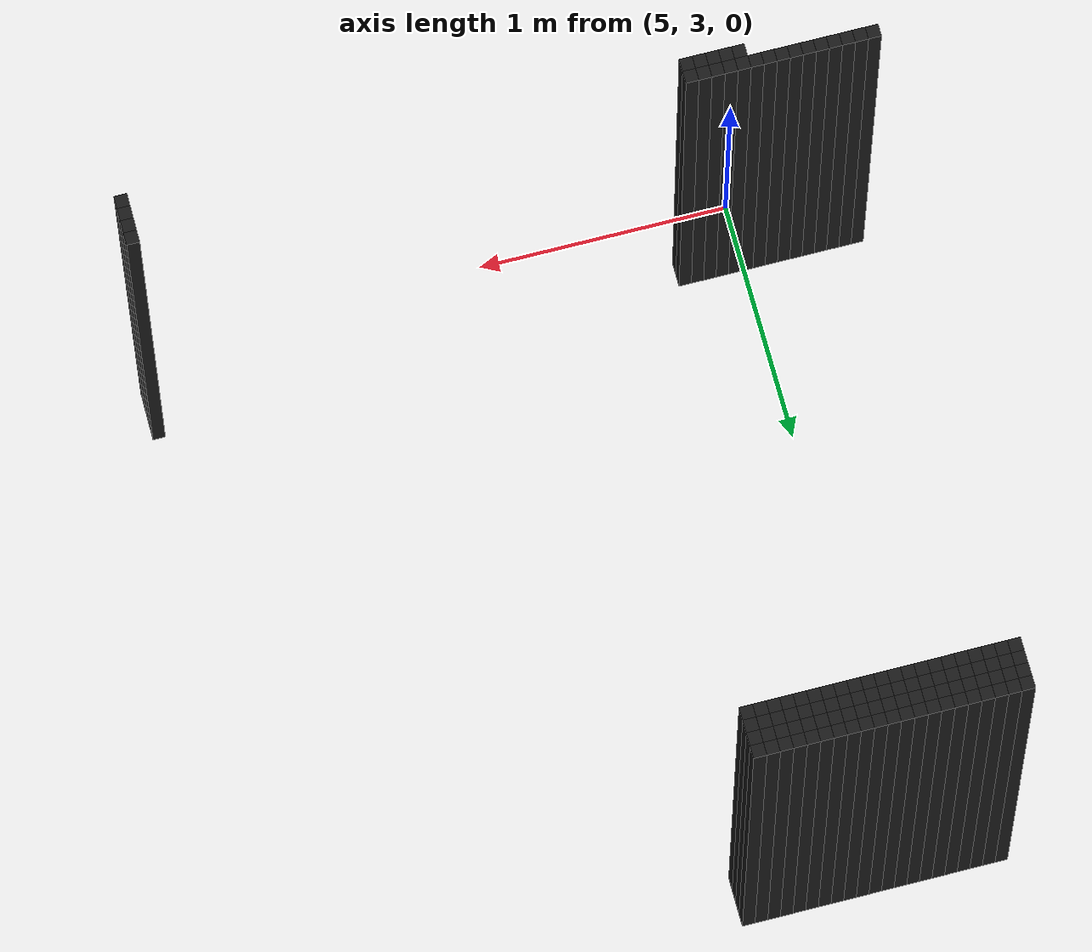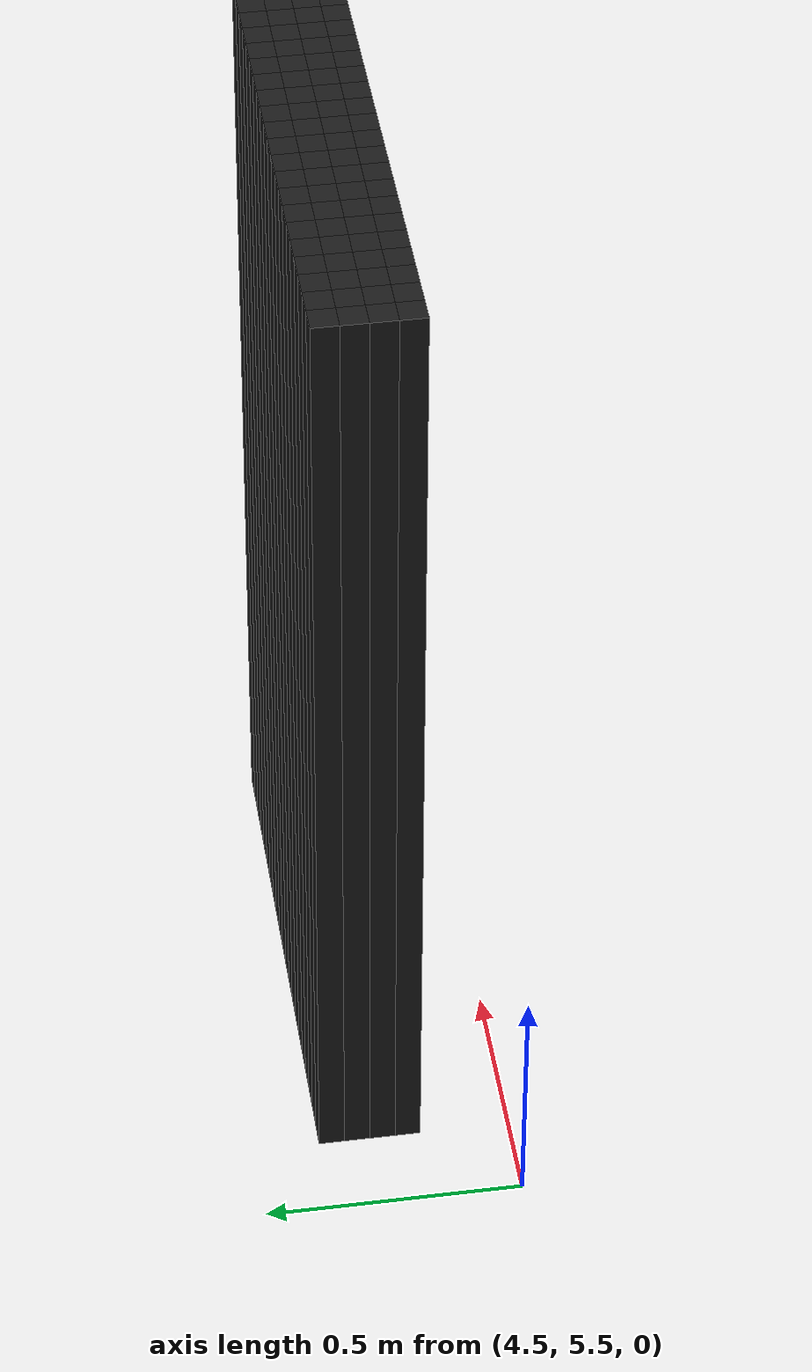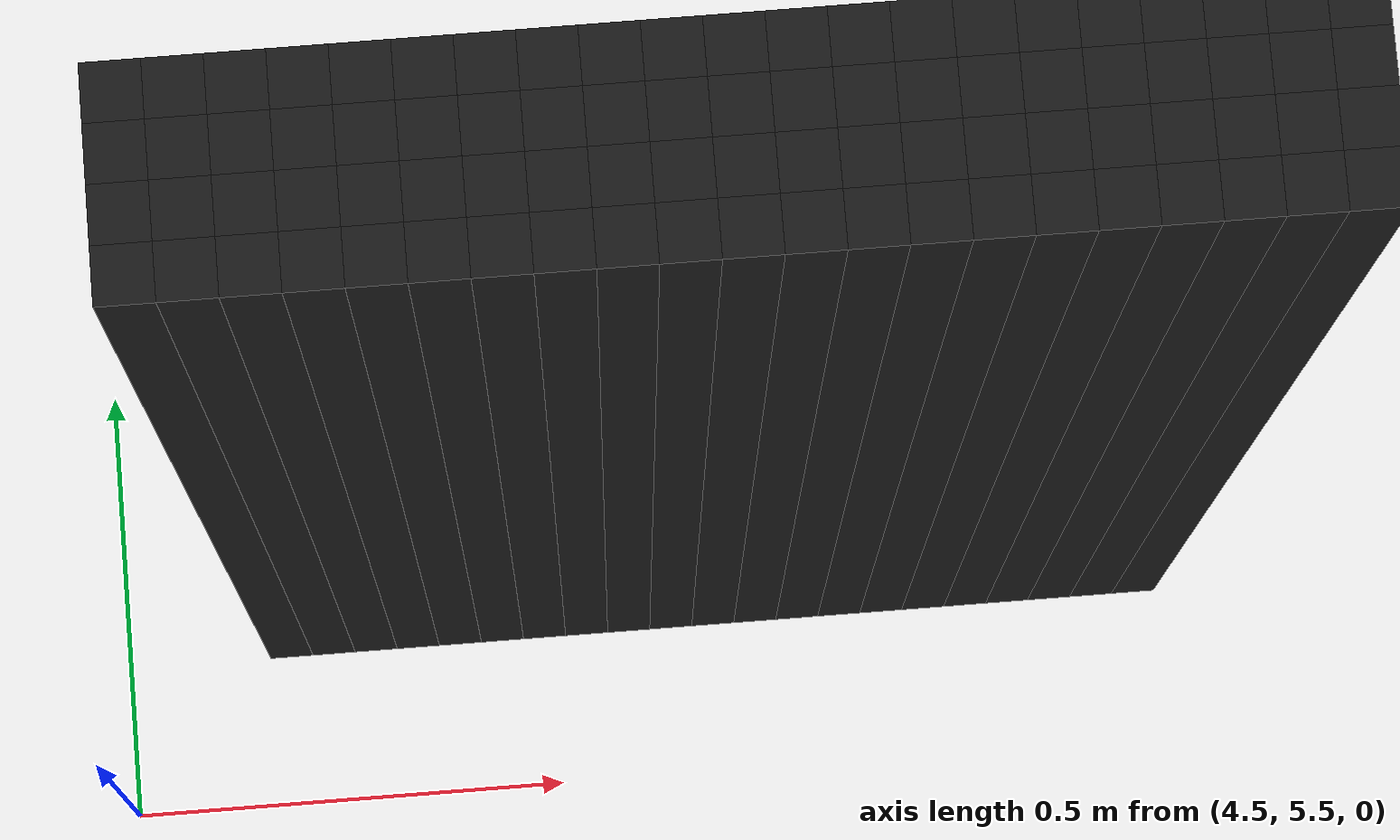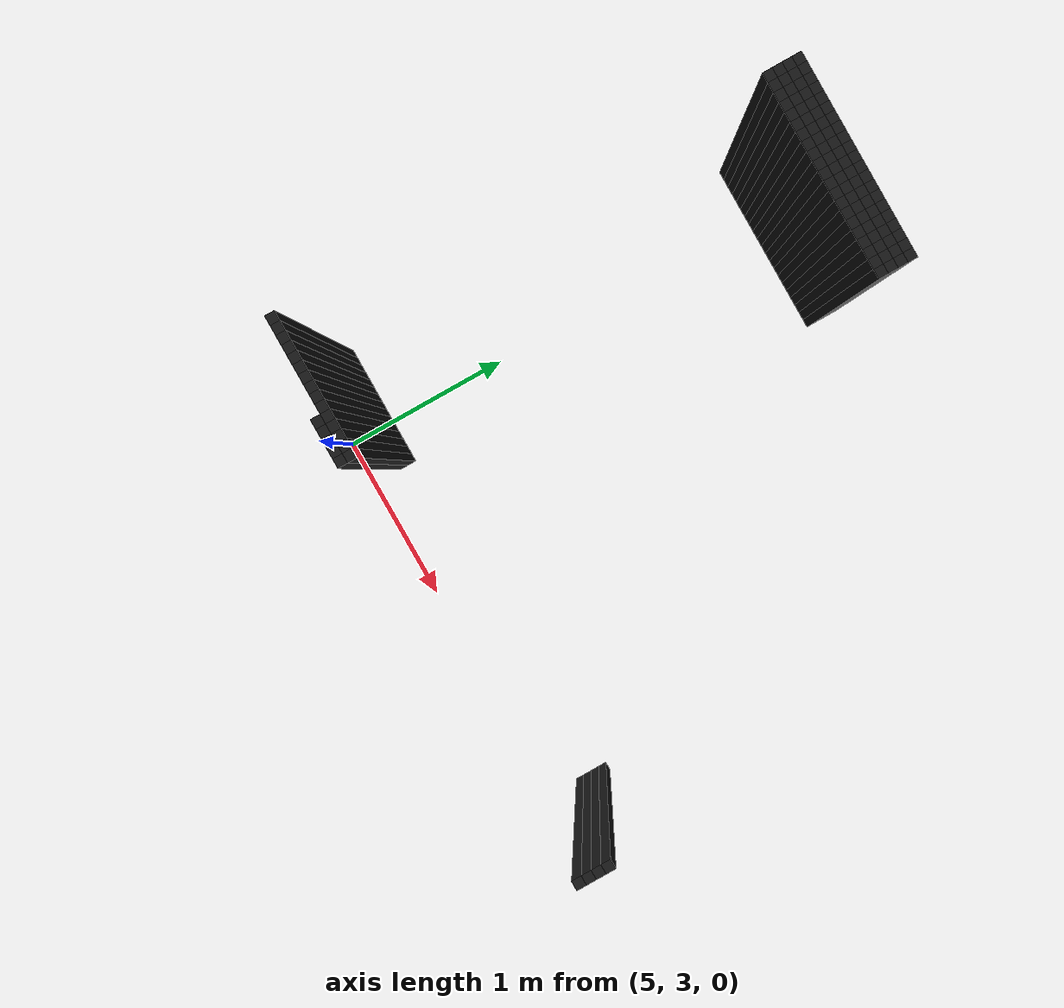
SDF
<sdf version="1.6">
 <model name="obstacle_184_50">
  <pose>4.690000000000001 5.8500000000000005 1.0 0 0 0</pose>
  <static>true</static>
  <link name="box_link">
   <collision name="box_collision"><geometry><box><size>0.05 0.05 2.0</size></box></geometry></collision>
   <visual name="box_visual">
    <geometry><box><size>0.05 0.05 2.0</size></box></geometry>
    <material><ambient>0 0 0 1</ambient><diffuse>0.1 0.1 0.1 1</diffuse></material>
   </visual>
  </link>
 </model>
 <model name="obstacle_185_50">
  <pose>4.74 5.8500000000000005 1.0 0 0 0</pose>
  <static>true</static>
  <link name="box_link">
   <collision name="box_collision"><geometry><box><size>0.05 0.05 2.0</size></box></geometry></collision>
   <visual name="box_visual">
    <geometry><box><size>0.05 0.05 2.0</size></box></geometry>
    <material><ambient>0 0 0 1</ambient><diffuse>0.1 0.1 0.1 1</diffuse></material>
   </visual>
  </link>
 </model>
 <model name="obstacle_186_50">
  <pose>4.790000000000001 5.8500000000000005 1.0 0 0 0</pose>
  <static>true</static>
  <link name="box_link">
   <collision name="box_collision"><geometry><box><size>0.05 0.05 2.0</size></box></geometry></collision>
   <visual name="box_visual">
    <geometry><box><size>0.05 0.05 2.0</size></box></geometry>
    <material><ambient>0 0 0 1</ambient><diffuse>0.1 0.1 0.1 1</diffuse></material>
   </visual>
  </link>
 </model>
 <model name="obstacle_187_50">
  <pose>4.84 5.8500000000000005 1.0 0 0 0</pose>
  <static>true</static>
  <link name="box_link">
   <collision name="box_collision"><geometry><box><size>0.05 0.05 2.0</size></box></geometry></collision>
   <visual name="box_visual">
    <geometry><box><size>0.05 0.05 2.0</size></box></geometry>
    <material><ambient>0 0 0 1</ambient><diffuse>0.1 0.1 0.1 1</diffuse></material>
   </visual>
  </link>
 </model>
 <model name="obstacle_188_50">
  <pose>4.890000000000001 5.8500000000000005 1.0 0 0 0</pose>
  <static>true</static>
  <link name="box_link">
   <collision name="box_collision"><geometry><box><size>0.05 0.05 2.0</size></box></geometry></collision>
   <visual name="box_visual">
    <geometry><box><size>0.05 0.05 2.0</size></box></geometry>
    <material><ambient>0 0 0 1</ambient><diffuse>0.1 0.1 0.1 1</diffuse></material>
   </visual>
  </link>
 </model>
 <model name="obstacle_189_50">
  <pose>4.940000000000001 5.8500000000000005 1.0 0 0 0</pose>
  <static>true</static>
  <link name="box_link">
   <collision name="box_collision"><geometry><box><size>0.05 0.05 2.0</size></box></geometry></collision>
   <visual name="box_visual">
    <geometry><box><size>0.05 0.05 2.0</size></box></geometry>
    <material><ambient>0 0 0 1</ambient><diffuse>0.1 0.1 0.1 1</diffuse></material>
   </visual>
  </link>
 </model>
 <model name="obstacle_190_50">
  <pose>4.99 5.8500000000000005 1.0 0 0 0</pose>
  <static>true</static>
  <link name="box_link">
   <collision name="box_collision"><geometry><box><size>0.05 0.05 2.0</size></box></geometry></collision>
   <visual name="box_visual">
    <geometry><box><size>0.05 0.05 2.0</size></box></geometry>
    <material><ambient>0 0 0 1</ambient><diffuse>0.1 0.1 0.1 1</diffuse></material>
   </visual>
  </link>
 </model>
 <model name="obstacle_191_50">
  <pose>5.040000000000001 5.8500000000000005 1.0 0 0 0</pose>
  <static>true</static>
  <link name="box_link">
   <collision name="box_collision"><geometry><box><size>0.05 0.05 2.0</size></box></geometry></collision>
   <visual name="box_visual">
    <geometry><box><size>0.05 0.05 2.0</size></box></geometry>
    <material><ambient>0 0 0 1</ambient><diffuse>0.1 0.1 0.1 1</diffuse></material>
   </visual>
  </link>
 </model>
 <model name="obstacle_192_50">
  <pose>5.090000000000002 5.8500000000000005 1.0 0 0 0</pose>
  <static>true</static>
  <link name="box_link">
   <collision name="box_collision"><geometry><box><size>0.05 0.05 2.0</size></box></geometry></collision>
   <visual name="box_visual">
    <geometry><box><size>0.05 0.05 2.0</size></box></geometry>
    <material><ambient>0 0 0 1</ambient><diffuse>0.1 0.1 0.1 1</diffuse></material>
   </visual>
  </link>
 </model>
 <model name="obstacle_193_50">
  <pose>5.140000000000001 5.8500000000000005 1.0 0 0 0</pose>
  <static>true</static>
  <link name="box_link">
   <collision name="box_collision"><geometry><box><size>0.05 0.05 2.0</size></box></geometry></collision>
   <visual name="box_visual">
    <geometry><box><size>0.05 0.05 2.0</size></box></geometry>
    <material><ambient>0 0 0 1</ambient><diffuse>0.1 0.1 0.1 1</diffuse></material>
   </visual>
  </link>
 </model>
 <model name="obstacle_194_50">
  <pose>5.190000000000001 5.8500000000000005 1.0 0 0 0</pose>
  <static>true</static>
  <link name="box_link">
   <collision name="box_collision"><geometry><box><size>0.05 0.05 2.0</size></box></geometry></collision>
   <visual name="box_visual">
    <geometry><box><size>0.05 0.05 2.0</size></box></geometry>
    <material><ambient>0 0 0 1</ambient><diffuse>0.1 0.1 0.1 1</diffuse></material>
   </visual>
  </link>
 </model>
 <model name="obstacle_195_50">
  <pose>5.24 5.8500000000000005 1.0 0 0 0</pose>
  <static>true</static>
  <link name="box_link">
   <collision name="box_collision"><geometry><box><size>0.05 0.05 2.0</size></box></geometry></collision>
   <visual name="box_visual">
    <geometry><box><size>0.05 0.05 2.0</size></box></geometry>
    <material><ambient>0 0 0 1</ambient><diffuse>0.1 0.1 0.1 1</diffuse></material>
   </visual>
  </link>
 </model>
 <model name="obstacle_196_50">
  <pose>5.290000000000001 5.8500000000000005 1.0 0 0 0</pose>
  <static>true</static>
  <link name="box_link">
   <collision name="box_collision"><geometry><box><size>0.05 0.05 2.0</size></box></geometry></collision>
   <visual name="box_visual">
    <geometry><box><size>0.05 0.05 2.0</size></box></geometry>
    <material><ambient>0 0 0 1</ambient><diffuse>0.1 0.1 0.1 1</diffuse></material>
   </visual>
  </link>
 </model>
 <model name="obstacle_197_50">
  <pose>5.340000000000002 5.8500000000000005 1.0 0 0 0</pose>
  <static>true</static>
  <link name="box_link">
   <collision name="box_collision"><geometry><box><size>0.05 0.05 2.0</size></box></geometry></collision>
   <visual name="box_visual">
    <geometry><box><size>0.05 0.05 2.0</size></box></geometry>
    <material><ambient>0 0 0 1</ambient><diffuse>0.1 0.1 0.1 1</diffuse></material>
   </visual>
  </link>
 </model>
 <model name="obstacle_198_50">
  <pose>5.390000000000001 5.8500000000000005 1.0 0 0 0</pose>
  <static>true</static>
  <link name="box_link">
   <collision name="box_collision"><geometry><box><size>0.05 0.05 2.0</size></box></geometry></collision>
   <visual name="box_visual">
    <geometry><box><size>0.05 0.05 2.0</size></box></geometry>
    <material><ambient>0 0 0 1</ambient><diffuse>0.1 0.1 0.1 1</diffuse></material>
   </visual>
  </link>
 </model>
 <model name="obstacle_199_50">
  <pose>5.440000000000001 5.8500000000000005 1.0 0 0 0</pose>
  <static>true</static>
  <link name="box_link">
   <collision name="box_collision"><geometry><box><size>0.05 0.05 2.0</size></box></geometry></collision>
   <visual name="box_visual">
    <geometry><box><size>0.05 0.05 2.0</size></box></geometry>
    <material><ambient>0 0 0 1</ambient><diffuse>0.1 0.1 0.1 1</diffuse></material>
   </visual>
  </link>
 </model>
 <model name="obstacle_200_50">
  <pose>5.49 5.8500000000000005 1.0 0 0 0</pose>
  <static>true</static>
  <link name="box_link">
   <collision name="box_collision"><geometry><box><size>0.05 0.05 2.0</size></box></geometry></collision>
   <visual name="box_visual">
    <geometry><box><size>0.05 0.05 2.0</size></box></geometry>
    <material><ambient>0 0 0 1</ambient><diffuse>0.1 0.1 0.1 1</diffuse></material>
   </visual>
  </link>
 </model>
 <model name="obstacle_201_50">
  <pose>5.540000000000001 5.8500000000000005 1.0 0 0 0</pose>
  <static>true</static>
  <link name="box_link">
   <collision name="box_collision"><geometry><box><size>0.05 0.05 2.0</size></box></geometry></collision>
   <visual name="box_visual">
    <geometry><box><size>0.05 0.05 2.0</size></box></geometry>
    <material><ambient>0 0 0 1</ambient><diffuse>0.1 0.1 0.1 1</diffuse></material>
   </visual>
  </link>
 </model>
 <model name="obstacle_202_50">
  <pose>5.590000000000002 5.8500000000000005 1.0 0 0 0</pose>
  <static>true</static>
  <link name="box_link">
   <collision name="box_collision"><geometry><box><size>0.05 0.05 2.0</size></box></geometry></collision>
   <visual name="box_visual">
    <geometry><box><size>0.05 0.05 2.0</size></box></geometry>
    <material><ambient>0 0 0 1</ambient><diffuse>0.1 0.1 0.1 1</diffuse></material>
   </visual>
  </link>
 </model>
 <model name="obstacle_203_50">
  <pose>5.640000000000001 5.8500000000000005 1.0 0 0 0</pose>
  <static>true</static>
  <link name="box_link">
   <collision name="box_collision"><geometry><box><size>0.05 0.05 2.0</size></box></geometry></collision>
   <visual name="box_visual">
    <geometry><box><size>0.05 0.05 2.0</size></box></geometry>
    <material><ambient>0 0 0 1</ambient><diffuse>0.1 0.1 0.1 1</diffuse></material>
   </visual>
  </link>
 </model>
 <model name="obstacle_204_50">
  <pose>5.690000000000001 5.8500000000000005 1.0 0 0 0</pose>
  <static>true</static>
  <link name="box_link">
   <collision name="box_collision"><geometry><box><size>0.05 0.05 2.0</size></box></geometry></collision>
   <visual name="box_visual">
    <geometry><box><size>0.05 0.05 2.0</size></box></geometry>
    <material><ambient>0 0 0 1</ambient><diffuse>0.1 0.1 0.1 1</diffuse></material>
   </visual>
  </link>
 </model>
 <model name="obstacle_184_51">
  <pose>4.690000000000001 5.8 1.0 0 0 0</pose>
  <static>true</static>
  <link name="box_link">
   <collision name="box_collision"><geometry><box><size>0.05 0.05 2.0</size></box></geometry></collision>
   <visual name="box_visual">
    <geometry><box><size>0.05 0.05 2.0</size></box></geometry>
    <material><ambient>0 0 0 1</ambient><diffuse>0.1 0.1 0.1 1</diffuse></material>
   </visual>
  </link>
 </model>
 <model name="obstacle_185_51">
  <pose>4.74 5.8 1.0 0 0 0</pose>
  <static>true</static>
  <link name="box_link">
   <collision name="box_collision"><geometry><box><size>0.05 0.05 2.0</size></box></geometry></collision>
   <visual name="box_visual">
    <geometry><box><size>0.05 0.05 2.0</size></box></geometry>
    <material><ambient>0 0 0 1</ambient><diffuse>0.1 0.1 0.1 1</diffuse></material>
   </visual>
  </link>
 </model>
 <model name="obstacle_186_51">
  <pose>4.790000000000001 5.8 1.0 0 0 0</pose>
  <static>true</static>
  <link name="box_link">
   <collision name="box_collision"><geometry><box><size>0.05 0.05 2.0</size></box></geometry></collision>
   <visual name="box_visual">
    <geometry><box><size>0.05 0.05 2.0</size></box></geometry>
    <material><ambient>0 0 0 1</ambient><diffuse>0.1 0.1 0.1 1</diffuse></material>
   </visual>
  </link>
 </model>
 <model name="obstacle_187_51">
  <pose>4.84 5.8 1.0 0 0 0</pose>
  <static>true</static>
  <link name="box_link">
   <collision name="box_collision"><geometry><box><size>0.05 0.05 2.0</size></box></geometry></collision>
   <visual name="box_visual">
    <geometry><box><size>0.05 0.05 2.0</size></box></geometry>
    <material><ambient>0 0 0 1</ambient><diffuse>0.1 0.1 0.1 1</diffuse></material>
   </visual>
  </link>
 </model>
 <model name="obstacle_188_51">
  <pose>4.890000000000001 5.8 1.0 0 0 0</pose>
  <static>true</static>
  <link name="box_link">
   <collision name="box_collision"><geometry><box><size>0.05 0.05 2.0</size></box></geometry></collision>
   <visual name="box_visual">
    <geometry><box><size>0.05 0.05 2.0</size></box></geometry>
    <material><ambient>0 0 0 1</ambient><diffuse>0.1 0.1 0.1 1</diffuse></material>
   </visual>
  </link>
 </model>
 <model name="obstacle_189_51">
  <pose>4.940000000000001 5.8 1.0 0 0 0</pose>
  <static>true</static>
  <link name="box_link">
   <collision name="box_collision"><geometry><box><size>0.05 0.05 2.0</size></box></geometry></collision>
   <visual name="box_visual">
    <geometry><box><size>0.05 0.05 2.0</size></box></geometry>
    <material><ambient>0 0 0 1</ambient><diffuse>0.1 0.1 0.1 1</diffuse></material>
   </visual>
  </link>
 </model>
 <model name="obstacle_190_51">
  <pose>4.99 5.8 1.0 0 0 0</pose>
  <static>true</static>
  <link name="box_link">
   <collision name="box_collision"><geometry><box><size>0.05 0.05 2.0</size></box></geometry></collision>
   <visual name="box_visual">
    <geometry><box><size>0.05 0.05 2.0</size></box></geometry>
    <material><ambient>0 0 0 1</ambient><diffuse>0.1 0.1 0.1 1</diffuse></material>
   </visual>
  </link>
 </model>
 <model name="obstacle_191_51">
  <pose>5.040000000000001 5.8 1.0 0 0 0</pose>
  <static>true</static>
  <link name="box_link">
   <collision name="box_collision"><geometry><box><size>0.05 0.05 2.0</size></box></geometry></collision>
   <visual name="box_visual">
    <geometry><box><size>0.05 0.05 2.0</size></box></geometry>
    <material><ambient>0 0 0 1</ambient><diffuse>0.1 0.1 0.1 1</diffuse></material>
   </visual>
  </link>
 </model>
 <model name="obstacle_192_51">
  <pose>5.090000000000002 5.8 1.0 0 0 0</pose>
  <static>true</static>
  <link name="box_link">
   <collision name="box_collision"><geometry><box><size>0.05 0.05 2.0</size></box></geometry></collision>
   <visual name="box_visual">
    <geometry><box><size>0.05 0.05 2.0</size></box></geometry>
    <material><ambient>0 0 0 1</ambient><diffuse>0.1 0.1 0.1 1</diffuse></material>
   </visual>
  </link>
 </model>
 <model name="obstacle_193_51">
  <pose>5.140000000000001 5.8 1.0 0 0 0</pose>
  <static>true</static>
  <link name="box_link">
   <collision name="box_collision"><geometry><box><size>0.05 0.05 2.0</size></box></geometry></collision>
   <visual name="box_visual">
    <geometry><box><size>0.05 0.05 2.0</size></box></geometry>
    <material><ambient>0 0 0 1</ambient><diffuse>0.1 0.1 0.1 1</diffuse></material>
   </visual>
  </link>
 </model>
 <model name="obstacle_194_51">
  <pose>5.190000000000001 5.8 1.0 0 0 0</pose>
  <static>true</static>
  <link name="box_link">
   <collision name="box_collision"><geometry><box><size>0.05 0.05 2.0</size></box></geometry></collision>
   <visual name="box_visual">
    <geometry><box><size>0.05 0.05 2.0</size></box></geometry>
    <material><ambient>0 0 0 1</ambient><diffuse>0.1 0.1 0.1 1</diffuse></material>
   </visual>
  </link>
 </model>
 <model name="obstacle_195_51">
  <pose>5.24 5.8 1.0 0 0 0</pose>
  <static>true</static>
  <link name="box_link">
   <collision name="box_collision"><geometry><box><size>0.05 0.05 2.0</size></box></geometry></collision>
   <visual name="box_visual">
    <geometry><box><size>0.05 0.05 2.0</size></box></geometry>
    <material><ambient>0 0 0 1</ambient><diffuse>0.1 0.1 0.1 1</diffuse></material>
   </visual>
  </link>
 </model>
 <model name="obstacle_196_51">
  <pose>5.290000000000001 5.8 1.0 0 0 0</pose>
  <static>true</static>
  <link name="box_link">
   <collision name="box_collision"><geometry><box><size>0.05 0.05 2.0</size></box></geometry></collision>
   <visual name="box_visual">
    <geometry><box><size>0.05 0.05 2.0</size></box></geometry>
    <material><ambient>0 0 0 1</ambient><diffuse>0.1 0.1 0.1 1</diffuse></material>
   </visual>
  </link>
 </model>
 <model name="obstacle_197_51">
  <pose>5.340000000000002 5.8 1.0 0 0 0</pose>
  <static>true</static>
  <link name="box_link">
   <collision name="box_collision"><geometry><box><size>0.05 0.05 2.0</size></box></geometry></collision>
   <visual name="box_visual">
    <geometry><box><size>0.05 0.05 2.0</size></box></geometry>
    <material><ambient>0 0 0 1</ambient><diffuse>0.1 0.1 0.1 1</diffuse></material>
   </visual>
  </link>
 </model>
 <model name="obstacle_198_51">
  <pose>5.390000000000001 5.8 1.0 0 0 0</pose>
  <static>true</static>
  <link name="box_link">
   <collision name="box_collision"><geometry><box><size>0.05 0.05 2.0</size></box></geometry></collision>
   <visual name="box_visual">
    <geometry><box><size>0.05 0.05 2.0</size></box></geometry>
    <material><ambient>0 0 0 1</ambient><diffuse>0.1 0.1 0.1 1</diffuse></material>
   </visual>
  </link>
 </model>
 <model name="obstacle_199_51">
  <pose>5.440000000000001 5.8 1.0 0 0 0</pose>
  <static>true</static>
  <link name="box_link">
   <collision name="box_collision"><geometry><box><size>0.05 0.05 2.0</size></box></geometry></collision>
   <visual name="box_visual">
    <geometry><box><size>0.05 0.05 2.0</size></box></geometry>
    <material><ambient>0 0 0 1</ambient><diffuse>0.1 0.1 0.1 1</diffuse></material>
   </visual>
  </link>
 </model>
 <model name="obstacle_200_51">
  <pose>5.49 5.8 1.0 0 0 0</pose>
  <static>true</static>
  <link name="box_link">
   <collision name="box_collision"><geometry><box><size>0.05 0.05 2.0</size></box></geometry></collision>
   <visual name="box_visual">
    <geometry><box><size>0.05 0.05 2.0</size></box></geometry>
    <material><ambient>0 0 0 1</ambient><diffuse>0.1 0.1 0.1 1</diffuse></material>
   </visual>
  </link>
 </model>
 <model name="obstacle_201_51">
  <pose>5.540000000000001 5.8 1.0 0 0 0</pose>
  <static>true</static>
  <link name="box_link">
   <collision name="box_collision"><geometry><box><size>0.05 0.05 2.0</size></box></geometry></collision>
   <visual name="box_visual">
    <geometry><box><size>0.05 0.05 2.0</size></box></geometry>
    <material><ambient>0 0 0 1</ambient><diffuse>0.1 0.1 0.1 1</diffuse></material>
   </visual>
  </link>
 </model>
 <model name="obstacle_202_51">
  <pose>5.590000000000002 5.8 1.0 0 0 0</pose>
  <static>true</static>
  <link name="box_link">
   <collision name="box_collision"><geometry><box><size>0.05 0.05 2.0</size></box></geometry></collision>
   <visual name="box_visual">
    <geometry><box><size>0.05 0.05 2.0</size></box></geometry>
    <material><ambient>0 0 0 1</ambient><diffuse>0.1 0.1 0.1 1</diffuse></material>
   </visual>
  </link>
 </model>
 <model name="obstacle_203_51">
  <pose>5.640000000000001 5.8 1.0 0 0 0</pose>
  <static>true</static>
  <link name="box_link">
   <collision name="box_collision"><geometry><box><size>0.05 0.05 2.0</size></box></geometry></collision>
   <visual name="box_visual">
    <geometry><box><size>0.05 0.05 2.0</size></box></geometry>
    <material><ambient>0 0 0 1</ambient><diffuse>0.1 0.1 0.1 1</diffuse></material>
   </visual>
  </link>
 </model>
 <model name="obstacle_204_51">
  <pose>5.690000000000001 5.8 1.0 0 0 0</pose>
  <static>true</static>
  <link name="box_link">
   <collision name="box_collision"><geometry><box><size>0.05 0.05 2.0</size></box></geometry></collision>
   <visual name="box_visual">
    <geometry><box><size>0.05 0.05 2.0</size></box></geometry>
    <material><ambient>0 0 0 1</ambient><diffuse>0.1 0.1 0.1 1</diffuse></material>
   </visual>
  </link>
 </model>
 <model name="obstacle_184_52">
  <pose>4.690000000000001 5.75 1.0 0 0 0</pose>
  <static>true</static>
  <link name="box_link">
   <collision name="box_collision"><geometry><box><size>0.05 0.05 2.0</size></box></geometry></collision>
   <visual name="box_visual">
    <geometry><box><size>0.05 0.05 2.0</size></box></geometry>
    <material><ambient>0 0 0 1</ambient><diffuse>0.1 0.1 0.1 1</diffuse></material>
   </visual>
  </link>
 </model>
 <model name="obstacle_185_52">
  <pose>4.74 5.75 1.0 0 0 0</pose>
  <static>true</static>
  <link name="box_link">
   <collision name="box_collision"><geometry><box><size>0.05 0.05 2.0</size></box></geometry></collision>
   <visual name="box_visual">
    <geometry><box><size>0.05 0.05 2.0</size></box></geometry>
    <material><ambient>0 0 0 1</ambient><diffuse>0.1 0.1 0.1 1</diffuse></material>
   </visual>
  </link>
 </model>
 <model name="obstacle_186_52">
  <pose>4.790000000000001 5.75 1.0 0 0 0</pose>
  <static>true</static>
  <link name="box_link">
   <collision name="box_collision"><geometry><box><size>0.05 0.05 2.0</size></box></geometry></collision>
   <visual name="box_visual">
    <geometry><box><size>0.05 0.05 2.0</size></box></geometry>
    <material><ambient>0 0 0 1</ambient><diffuse>0.1 0.1 0.1 1</diffuse></material>
   </visual>
  </link>
 </model>
 <model name="obstacle_187_52">
  <pose>4.84 5.75 1.0 0 0 0</pose>
  <static>true</static>
  <link name="box_link">
   <collision name="box_collision"><geometry><box><size>0.05 0.05 2.0</size></box></geometry></collision>
   <visual name="box_visual">
    <geometry><box><size>0.05 0.05 2.0</size></box></geometry>
    <material><ambient>0 0 0 1</ambient><diffuse>0.1 0.1 0.1 1</diffuse></material>
   </visual>
  </link>
 </model>
 <model name="obstacle_188_52">
  <pose>4.890000000000001 5.75 1.0 0 0 0</pose>
  <static>true</static>
  <link name="box_link">
   <collision name="box_collision"><geometry><box><size>0.05 0.05 2.0</size></box></geometry></collision>
   <visual name="box_visual">
    <geometry><box><size>0.05 0.05 2.0</size></box></geometry>
    <material><ambient>0 0 0 1</ambient><diffuse>0.1 0.1 0.1 1</diffuse></material>
   </visual>
  </link>
 </model>
 <model name="obstacle_189_52">
  <pose>4.940000000000001 5.75 1.0 0 0 0</pose>
  <static>true</static>
  <link name="box_link">
   <collision name="box_collision"><geometry><box><size>0.05 0.05 2.0</size></box></geometry></collision>
   <visual name="box_visual">
    <geometry><box><size>0.05 0.05 2.0</size></box></geometry>
    <material><ambient>0 0 0 1</ambient><diffuse>0.1 0.1 0.1 1</diffuse></material>
   </visual>
  </link>
 </model>
 <model name="obstacle_190_52">
  <pose>4.99 5.75 1.0 0 0 0</pose>
  <static>true</static>
  <link name="box_link">
   <collision name="box_collision"><geometry><box><size>0.05 0.05 2.0</size></box></geometry></collision>
   <visual name="box_visual">
    <geometry><box><size>0.05 0.05 2.0</size></box></geometry>
    <material><ambient>0 0 0 1</ambient><diffuse>0.1 0.1 0.1 1</diffuse></material>
   </visual>
  </link>
 </model>
 <model name="obstacle_191_52">
  <pose>5.040000000000001 5.75 1.0 0 0 0</pose>
  <static>true</static>
  <link name="box_link">
   <collision name="box_collision"><geometry><box><size>0.05 0.05 2.0</size></box></geometry></collision>
   <visual name="box_visual">
    <geometry><box><size>0.05 0.05 2.0</size></box></geometry>
    <material><ambient>0 0 0 1</ambient><diffuse>0.1 0.1 0.1 1</diffuse></material>
   </visual>
  </link>
 </model>
 <model name="obstacle_192_52">
  <pose>5.090000000000002 5.75 1.0 0 0 0</pose>
  <static>true</static>
  <link name="box_link">
   <collision name="box_collision"><geometry><box><size>0.05 0.05 2.0</size></box></geometry></collision>
   <visual name="box_visual">
    <geometry><box><size>0.05 0.05 2.0</size></box></geometry>
    <material><ambient>0 0 0 1</ambient><diffuse>0.1 0.1 0.1 1</diffuse></material>
   </visual>
  </link>
 </model>
 <model name="obstacle_193_52">
  <pose>5.140000000000001 5.75 1.0 0 0 0</pose>
  <static>true</static>
  <link name="box_link">
   <collision name="box_collision"><geometry><box><size>0.05 0.05 2.0</size></box></geometry></collision>
   <visual name="box_visual">
    <geometry><box><size>0.05 0.05 2.0</size></box></geometry>
    <material><ambient>0 0 0 1</ambient><diffuse>0.1 0.1 0.1 1</diffuse></material>
   </visual>
  </link>
 </model>
 <model name="obstacle_194_52">
  <pose>5.190000000000001 5.75 1.0 0 0 0</pose>
  <static>true</static>
  <link name="box_link">
   <collision name="box_collision"><geometry><box><size>0.05 0.05 2.0</size></box></geometry></collision>
   <visual name="box_visual">
    <geometry><box><size>0.05 0.05 2.0</size></box></geometry>
    <material><ambient>0 0 0 1</ambient><diffuse>0.1 0.1 0.1 1</diffuse></material>
   </visual>
  </link>
 </model>
 <model name="obstacle_195_52">
  <pose>5.24 5.75 1.0 0 0 0</pose>
  <static>true</static>
  <link name="box_link">
   <collision name="box_collision"><geometry><box><size>0.05 0.05 2.0</size></box></geometry></collision>
   <visual name="box_visual">
    <geometry><box><size>0.05 0.05 2.0</size></box></geometry>
    <material><ambient>0 0 0 1</ambient><diffuse>0.1 0.1 0.1 1</diffuse></material>
   </visual>
  </link>
 </model>
 <model name="obstacle_196_52">
  <pose>5.290000000000001 5.75 1.0 0 0 0</pose>
  <static>true</static>
  <link name="box_link">
   <collision name="box_collision"><geometry><box><size>0.05 0.05 2.0</size></box></geometry></collision>
   <visual name="box_visual">
    <geometry><box><size>0.05 0.05 2.0</size></box></geometry>
    <material><ambient>0 0 0 1</ambient><diffuse>0.1 0.1 0.1 1</diffuse></material>
   </visual>
  </link>
 </model>
 <model name="obstacle_197_52">
  <pose>5.340000000000002 5.75 1.0 0 0 0</pose>
  <static>true</static>
  <link name="box_link">
   <collision name="box_collision"><geometry><box><size>0.05 0.05 2.0</size></box></geometry></collision>
   <visual name="box_visual">
    <geometry><box><size>0.05 0.05 2.0</size></box></geometry>
    <material><ambient>0 0 0 1</ambient><diffuse>0.1 0.1 0.1 1</diffuse></material>
   </visual>
  </link>
 </model>
 <model name="obstacle_198_52">
  <pose>5.390000000000001 5.75 1.0 0 0 0</pose>
  <static>true</static>
  <link name="box_link">
   <collision name="box_collision"><geometry><box><size>0.05 0.05 2.0</size></box></geometry></collision>
   <visual name="box_visual">
    <geometry><box><size>0.05 0.05 2.0</size></box></geometry>
    <material><ambient>0 0 0 1</ambient><diffuse>0.1 0.1 0.1 1</diffuse></material>
   </visual>
  </link>
 </model>
 <model name="obstacle_199_52">
  <pose>5.440000000000001 5.75 1.0 0 0 0</pose>
  <static>true</static>
  <link name="box_link">
   <collision name="box_collision"><geometry><box><size>0.05 0.05 2.0</size></box></geometry></collision>
   <visual name="box_visual">
    <geometry><box><size>0.05 0.05 2.0</size></box></geometry>
    <material><ambient>0 0 0 1</ambient><diffuse>0.1 0.1 0.1 1</diffuse></material>
   </visual>
  </link>
 </model>
 <model name="obstacle_200_52">
  <pose>5.49 5.75 1.0 0 0 0</pose>
  <static>true</static>
  <link name="box_link">
   <collision name="box_collision"><geometry><box><size>0.05 0.05 2.0</size></box></geometry></collision>
   <visual name="box_visual">
    <geometry><box><size>0.05 0.05 2.0</size></box></geometry>
    <material><ambient>0 0 0 1</ambient><diffuse>0.1 0.1 0.1 1</diffuse></material>
   </visual>
  </link>
 </model>
 <model name="obstacle_201_52">
  <pose>5.540000000000001 5.75 1.0 0 0 0</pose>
  <static>true</static>
  <link name="box_link">
   <collision name="box_collision"><geometry><box><size>0.05 0.05 2.0</size></box></geometry></collision>
   <visual name="box_visual">
    <geometry><box><size>0.05 0.05 2.0</size></box></geometry>
    <material><ambient>0 0 0 1</ambient><diffuse>0.1 0.1 0.1 1</diffuse></material>
   </visual>
  </link>
 </model>
 <model name="obstacle_202_52">
  <pose>5.590000000000002 5.75 1.0 0 0 0</pose>
  <static>true</static>
  <link name="box_link">
   <collision name="box_collision"><geometry><box><size>0.05 0.05 2.0</size></box></geometry></collision>
   <visual name="box_visual">
    <geometry><box><size>0.05 0.05 2.0</size></box></geometry>
    <material><ambient>0 0 0 1</ambient><diffuse>0.1 0.1 0.1 1</diffuse></material>
   </visual>
  </link>
 </model>
 <model name="obstacle_203_52">
  <pose>5.640000000000001 5.75 1.0 0 0 0</pose>
  <static>true</static>
  <link name="box_link">
   <collision name="box_collision"><geometry><box><size>0.05 0.05 2.0</size></box></geometry></collision>
   <visual name="box_visual">
    <geometry><box><size>0.05 0.05 2.0</size></box></geometry>
    <material><ambient>0 0 0 1</ambient><diffuse>0.1 0.1 0.1 1</diffuse></material>
   </visual>
  </link>
 </model>
 <model name="obstacle_204_52">
  <pose>5.690000000000001 5.75 1.0 0 0 0</pose>
  <static>true</static>
  <link name="box_link">
   <collision name="box_collision"><geometry><box><size>0.05 0.05 2.0</size></box></geometry></collision>
   <visual name="box_visual">
    <geometry><box><size>0.05 0.05 2.0</size></box></geometry>
    <material><ambient>0 0 0 1</ambient><diffuse>0.1 0.1 0.1 1</diffuse></material>
   </visual>
  </link>
 </model>
 <model name="obstacle_184_53">
  <pose>4.690000000000001 5.7 1.0 0 0 0</pose>
  <static>true</static>
  <link name="box_link">
   <collision name="box_collision"><geometry><box><size>0.05 0.05 2.0</size></box></geometry></collision>
   <visual name="box_visual">
    <geometry><box><size>0.05 0.05 2.0</size></box></geometry>
    <material><ambient>0 0 0 1</ambient><diffuse>0.1 0.1 0.1 1</diffuse></material>
   </visual>
  </link>
 </model>
 <model name="obstacle_185_53">
  <pose>4.74 5.7 1.0 0 0 0</pose>
  <static>true</static>
  <link name="box_link">
   <collision name="box_collision"><geometry><box><size>0.05 0.05 2.0</size></box></geometry></collision>
   <visual name="box_visual">
    <geometry><box><size>0.05 0.05 2.0</size></box></geometry>
    <material><ambient>0 0 0 1</ambient><diffuse>0.1 0.1 0.1 1</diffuse></material>
   </visual>
  </link>
 </model>
 <model name="obstacle_186_53">
  <pose>4.790000000000001 5.7 1.0 0 0 0</pose>
  <static>true</static>
  <link name="box_link">
   <collision name="box_collision"><geometry><box><size>0.05 0.05 2.0</size></box></geometry></collision>
   <visual name="box_visual">
    <geometry><box><size>0.05 0.05 2.0</size></box></geometry>
    <material><ambient>0 0 0 1</ambient><diffuse>0.1 0.1 0.1 1</diffuse></material>
   </visual>
  </link>
 </model>
 <model name="obstacle_187_53">
  <pose>4.84 5.7 1.0 0 0 0</pose>
  <static>true</static>
  <link name="box_link">
   <collision name="box_collision"><geometry><box><size>0.05 0.05 2.0</size></box></geometry></collision>
   <visual name="box_visual">
    <geometry><box><size>0.05 0.05 2.0</size></box></geometry>
    <material><ambient>0 0 0 1</ambient><diffuse>0.1 0.1 0.1 1</diffuse></material>
   </visual>
  </link>
 </model>
 <model name="obstacle_188_53">
  <pose>4.890000000000001 5.7 1.0 0 0 0</pose>
  <static>true</static>
  <link name="box_link">
   <collision name="box_collision"><geometry><box><size>0.05 0.05 2.0</size></box></geometry></collision>
   <visual name="box_visual">
    <geometry><box><size>0.05 0.05 2.0</size></box></geometry>
    <material><ambient>0 0 0 1</ambient><diffuse>0.1 0.1 0.1 1</diffuse></material>
   </visual>
  </link>
 </model>
 <model name="obstacle_189_53">
  <pose>4.940000000000001 5.7 1.0 0 0 0</pose>
  <static>true</static>
  <link name="box_link">
   <collision name="box_collision"><geometry><box><size>0.05 0.05 2.0</size></box></geometry></collision>
   <visual name="box_visual">
    <geometry><box><size>0.05 0.05 2.0</size></box></geometry>
    <material><ambient>0 0 0 1</ambient><diffuse>0.1 0.1 0.1 1</diffuse></material>
   </visual>
  </link>
 </model>
 <model name="obstacle_190_53">
  <pose>4.99 5.7 1.0 0 0 0</pose>
  <static>true</static>
  <link name="box_link">
   <collision name="box_collision"><geometry><box><size>0.05 0.05 2.0</size></box></geometry></collision>
   <visual name="box_visual">
    <geometry><box><size>0.05 0.05 2.0</size></box></geometry>
    <material><ambient>0 0 0 1</ambient><diffuse>0.1 0.1 0.1 1</diffuse></material>
   </visual>
  </link>
 </model>
 <model name="obstacle_191_53">
  <pose>5.040000000000001 5.7 1.0 0 0 0</pose>
  <static>true</static>
  <link name="box_link">
   <collision name="box_collision"><geometry><box><size>0.05 0.05 2.0</size></box></geometry></collision>
   <visual name="box_visual">
    <geometry><box><size>0.05 0.05 2.0</size></box></geometry>
    <material><ambient>0 0 0 1</ambient><diffuse>0.1 0.1 0.1 1</diffuse></material>
   </visual>
  </link>
 </model>
 <model name="obstacle_192_53">
  <pose>5.090000000000002 5.7 1.0 0 0 0</pose>
  <static>true</static>
  <link name="box_link">
   <collision name="box_collision"><geometry><box><size>0.05 0.05 2.0</size></box></geometry></collision>
   <visual name="box_visual">
    <geometry><box><size>0.05 0.05 2.0</size></box></geometry>
    <material><ambient>0 0 0 1</ambient><diffuse>0.1 0.1 0.1 1</diffuse></material>
   </visual>
  </link>
 </model>
 <model name="obstacle_193_53">
  <pose>5.140000000000001 5.7 1.0 0 0 0</pose>
  <static>true</static>
  <link name="box_link">
   <collision name="box_collision"><geometry><box><size>0.05 0.05 2.0</size></box></geometry></collision>
   <visual name="box_visual">
    <geometry><box><size>0.05 0.05 2.0</size></box></geometry>
    <material><ambient>0 0 0 1</ambient><diffuse>0.1 0.1 0.1 1</diffuse></material>
   </visual>
  </link>
 </model>
 <model name="obstacle_194_53">
  <pose>5.190000000000001 5.7 1.0 0 0 0</pose>
  <static>true</static>
  <link name="box_link">
   <collision name="box_collision"><geometry><box><size>0.05 0.05 2.0</size></box></geometry></collision>
   <visual name="box_visual">
    <geometry><box><size>0.05 0.05 2.0</size></box></geometry>
    <material><ambient>0 0 0 1</ambient><diffuse>0.1 0.1 0.1 1</diffuse></material>
   </visual>
  </link>
 </model>
 <model name="obstacle_195_53">
  <pose>5.24 5.7 1.0 0 0 0</pose>
  <static>true</static>
  <link name="box_link">
   <collision name="box_collision"><geometry><box><size>0.05 0.05 2.0</size></box></geometry></collision>
   <visual name="box_visual">
    <geometry><box><size>0.05 0.05 2.0</size></box></geometry>
    <material><ambient>0 0 0 1</ambient><diffuse>0.1 0.1 0.1 1</diffuse></material>
   </visual>
  </link>
 </model>
 <model name="obstacle_196_53">
  <pose>5.290000000000001 5.7 1.0 0 0 0</pose>
  <static>true</static>
  <link name="box_link">
   <collision name="box_collision"><geometry><box><size>0.05 0.05 2.0</size></box></geometry></collision>
   <visual name="box_visual">
    <geometry><box><size>0.05 0.05 2.0</size></box></geometry>
    <material><ambient>0 0 0 1</ambient><diffuse>0.1 0.1 0.1 1</diffuse></material>
   </visual>
  </link>
 </model>
 <model name="obstacle_197_53">
  <pose>5.340000000000002 5.7 1.0 0 0 0</pose>
  <static>true</static>
  <link name="box_link">
   <collision name="box_collision"><geometry><box><size>0.05 0.05 2.0</size></box></geometry></collision>
   <visual name="box_visual">
    <geometry><box><size>0.05 0.05 2.0</size></box></geometry>
    <material><ambient>0 0 0 1</ambient><diffuse>0.1 0.1 0.1 1</diffuse></material>
   </visual>
  </link>
 </model>
 <model name="obstacle_198_53">
  <pose>5.390000000000001 5.7 1.0 0 0 0</pose>
  <static>true</static>
  <link name="box_link">
   <collision name="box_collision"><geometry><box><size>0.05 0.05 2.0</size></box></geometry></collision>
   <visual name="box_visual">
    <geometry><box><size>0.05 0.05 2.0</size></box></geometry>
    <material><ambient>0 0 0 1</ambient><diffuse>0.1 0.1 0.1 1</diffuse></material>
   </visual>
  </link>
 </model>
 <model name="obstacle_199_53">
  <pose>5.440000000000001 5.7 1.0 0 0 0</pose>
  <static>true</static>
  <link name="box_link">
   <collision name="box_collision"><geometry><box><size>0.05 0.05 2.0</size></box></geometry></collision>
   <visual name="box_visual">
    <geometry><box><size>0.05 0.05 2.0</size></box></geometry>
    <material><ambient>0 0 0 1</ambient><diffuse>0.1 0.1 0.1 1</diffuse></material>
   </visual>
  </link>
 </model>
 <model name="obstacle_200_53">
  <pose>5.49 5.7 1.0 0 0 0</pose>
  <static>true</static>
  <link name="box_link">
   <collision name="box_collision"><geometry><box><size>0.05 0.05 2.0</size></box></geometry></collision>
   <visual name="box_visual">
    <geometry><box><size>0.05 0.05 2.0</size></box></geometry>
    <material><ambient>0 0 0 1</ambient><diffuse>0.1 0.1 0.1 1</diffuse></material>
   </visual>
  </link>
 </model>
 <model name="obstacle_201_53">
  <pose>5.540000000000001 5.7 1.0 0 0 0</pose>
  <static>true</static>
  <link name="box_link">
   <collision name="box_collision"><geometry><box><size>0.05 0.05 2.0</size></box></geometry></collision>
   <visual name="box_visual">
    <geometry><box><size>0.05 0.05 2.0</size></box></geometry>
    <material><ambient>0 0 0 1</ambient><diffuse>0.1 0.1 0.1 1</diffuse></material>
   </visual>
  </link>
 </model>
 <model name="obstacle_202_53">
  <pose>5.590000000000002 5.7 1.0 0 0 0</pose>
  <static>true</static>
  <link name="box_link">
   <collision name="box_collision"><geometry><box><size>0.05 0.05 2.0</size></box></geometry></collision>
   <visual name="box_visual">
    <geometry><box><size>0.05 0.05 2.0</size></box></geometry>
    <material><ambient>0 0 0 1</ambient><diffuse>0.1 0.1 0.1 1</diffuse></material>
   </visual>
  </link>
 </model>
 <model name="obstacle_203_53">
  <pose>5.640000000000001 5.7 1.0 0 0 0</pose>
  <static>true</static>
  <link name="box_link">
   <collision name="box_collision"><geometry><box><size>0.05 0.05 2.0</size></box></geometry></collision>
   <visual name="box_visual">
    <geometry><box><size>0.05 0.05 2.0</size></box></geometry>
    <material><ambient>0 0 0 1</ambient><diffuse>0.1 0.1 0.1 1</diffuse></material>
   </visual>
  </link>
 </model>
 <model name="obstacle_204_53">
  <pose>5.690000000000001 5.7 1.0 0 0 0</pose>
  <static>true</static>
  <link name="box_link">
   <collision name="box_collision"><geometry><box><size>0.05 0.05 2.0</size></box></geometry></collision>
   <visual name="box_visual">
    <geometry><box><size>0.05 0.05 2.0</size></box></geometry>
    <material><ambient>0 0 0 1</ambient><diffuse>0.1 0.1 0.1 1</diffuse></material>
   </visual>
  </link>
 </model>
 <model name="obstacle_238_100">
  <pose>7.390000000000001 3.3500000000000005 1.0 0 0 0</pose>
  <static>true</static>
  <link name="box_link">
   <collision name="box_collision"><geometry><box><size>0.05 0.05 2.0</size></box></geometry></collision>
   <visual name="box_visual">
    <geometry><box><size>0.05 0.05 2.0</size></box></geometry>
    <material><ambient>0 0 0 1</ambient><diffuse>0.1 0.1 0.1 1</diffuse></material>
   </visual>
  </link>
 </model>
 <model name="obstacle_238_101">
  <pose>7.390000000000001 3.3 1.0 0 0 0</pose>
  <static>true</static>
  <link name="box_link">
   <collision name="box_collision"><geometry><box><size>0.05 0.05 2.0</size></box></geometry></collision>
   <visual name="box_visual">
    <geometry><box><size>0.05 0.05 2.0</size></box></geometry>
    <material><ambient>0 0 0 1</ambient><diffuse>0.1 0.1 0.1 1</diffuse></material>
   </visual>
  </link>
 </model>
 <model name="obstacle_181_102">
  <pose>4.540000000000001 3.25 1.0 0 0 0</pose>
  <static>true</static>
  <link name="box_link">
   <collision name="box_collision"><geometry><box><size>0.05 0.05 2.0</size></box></geometry></collision>
   <visual name="box_visual">
    <geometry><box><size>0.05 0.05 2.0</size></box></geometry>
    <material><ambient>0 0 0 1</ambient><diffuse>0.1 0.1 0.1 1</diffuse></material>
   </visual>
  </link>
 </model>
 <model name="obstacle_182_102">
  <pose>4.59 3.25 1.0 0 0 0</pose>
  <static>true</static>
  <link name="box_link">
   <collision name="box_collision"><geometry><box><size>0.05 0.05 2.0</size></box></geometry></collision>
   <visual name="box_visual">
    <geometry><box><size>0.05 0.05 2.0</size></box></geometry>
    <material><ambient>0 0 0 1</ambient><diffuse>0.1 0.1 0.1 1</diffuse></material>
   </visual>
  </link>
 </model>
 <model name="obstacle_183_102">
  <pose>4.640000000000001 3.25 1.0 0 0 0</pose>
  <static>true</static>
  <link name="box_link">
   <collision name="box_collision"><geometry><box><size>0.05 0.05 2.0</size></box></geometry></collision>
   <visual name="box_visual">
    <geometry><box><size>0.05 0.05 2.0</size></box></geometry>
    <material><ambient>0 0 0 1</ambient><diffuse>0.1 0.1 0.1 1</diffuse></material>
   </visual>
  </link>
 </model>
 <model name="obstacle_184_102">
  <pose>4.690000000000001 3.25 1.0 0 0 0</pose>
  <static>true</static>
  <link name="box_link">
   <collision name="box_collision"><geometry><box><size>0.05 0.05 2.0</size></box></geometry></collision>
   <visual name="box_visual">
    <geometry><box><size>0.05 0.05 2.0</size></box></geometry>
    <material><ambient>0 0 0 1</ambient><diffuse>0.1 0.1 0.1 1</diffuse></material>
   </visual>
  </link>
 </model>
 <model name="obstacle_185_102">
  <pose>4.74 3.25 1.0 0 0 0</pose>
  <static>true</static>
  <link name="box_link">
   <collision name="box_collision"><geometry><box><size>0.05 0.05 2.0</size></box></geometry></collision>
   <visual name="box_visual">
    <geometry><box><size>0.05 0.05 2.0</size></box></geometry>
    <material><ambient>0 0 0 1</ambient><diffuse>0.1 0.1 0.1 1</diffuse></material>
   </visual>
  </link>
 </model>
 <model name="obstacle_186_102">
  <pose>4.790000000000001 3.25 1.0 0 0 0</pose>
  <static>true</static>
  <link name="box_link">
   <collision name="box_collision"><geometry><box><size>0.05 0.05 2.0</size></box></geometry></collision>
   <visual name="box_visual">
    <geometry><box><size>0.05 0.05 2.0</size></box></geometry>
    <material><ambient>0 0 0 1</ambient><diffuse>0.1 0.1 0.1 1</diffuse></material>
   </visual>
  </link>
 </model>
 <model name="obstacle_187_102">
  <pose>4.84 3.25 1.0 0 0 0</pose>
  <static>true</static>
  <link name="box_link">
   <collision name="box_collision"><geometry><box><size>0.05 0.05 2.0</size></box></geometry></collision>
   <visual name="box_visual">
    <geometry><box><size>0.05 0.05 2.0</size></box></geometry>
    <material><ambient>0 0 0 1</ambient><diffuse>0.1 0.1 0.1 1</diffuse></material>
   </visual>
  </link>
 </model>
 <model name="obstacle_188_102">
  <pose>4.890000000000001 3.25 1.0 0 0 0</pose>
  <static>true</static>
  <link name="box_link">
   <collision name="box_collision"><geometry><box><size>0.05 0.05 2.0</size></box></geometry></collision>
   <visual name="box_visual">
    <geometry><box><size>0.05 0.05 2.0</size></box></geometry>
    <material><ambient>0 0 0 1</ambient><diffuse>0.1 0.1 0.1 1</diffuse></material>
   </visual>
  </link>
 </model>
 <model name="obstacle_189_102">
  <pose>4.940000000000001 3.25 1.0 0 0 0</pose>
  <static>true</static>
  <link name="box_link">
   <collision name="box_collision"><geometry><box><size>0.05 0.05 2.0</size></box></geometry></collision>
   <visual name="box_visual">
    <geometry><box><size>0.05 0.05 2.0</size></box></geometry>
    <material><ambient>0 0 0 1</ambient><diffuse>0.1 0.1 0.1 1</diffuse></material>
   </visual>
  </link>
 </model>
 <model name="obstacle_190_102">
  <pose>4.99 3.25 1.0 0 0 0</pose>
  <static>true</static>
  <link name="box_link">
   <collision name="box_collision"><geometry><box><size>0.05 0.05 2.0</size></box></geometry></collision>
   <visual name="box_visual">
    <geometry><box><size>0.05 0.05 2.0</size></box></geometry>
    <material><ambient>0 0 0 1</ambient><diffuse>0.1 0.1 0.1 1</diffuse></material>
   </visual>
  </link>
 </model>
 <model name="obstacle_191_102">
  <pose>5.040000000000001 3.25 1.0 0 0 0</pose>
  <static>true</static>
  <link name="box_link">
   <collision name="box_collision"><geometry><box><size>0.05 0.05 2.0</size></box></geometry></collision>
   <visual name="box_visual">
    <geometry><box><size>0.05 0.05 2.0</size></box></geometry>
    <material><ambient>0 0 0 1</ambient><diffuse>0.1 0.1 0.1 1</diffuse></material>
   </visual>
  </link>
 </model>
 <model name="obstacle_192_102">
  <pose>5.090000000000002 3.25 1.0 0 0 0</pose>
  <static>true</static>
  <link name="box_link">
   <collision name="box_collision"><geometry><box><size>0.05 0.05 2.0</size></box></geometry></collision>
   <visual name="box_visual">
    <geometry><box><size>0.05 0.05 2.0</size></box></geometry>
    <material><ambient>0 0 0 1</ambient><diffuse>0.1 0.1 0.1 1</diffuse></material>
   </visual>
  </link>
 </model>
 <model name="obstacle_193_102">
  <pose>5.140000000000001 3.25 1.0 0 0 0</pose>
  <static>true</static>
  <link name="box_link">
   <collision name="box_collision"><geometry><box><size>0.05 0.05 2.0</size></box></geometry></collision>
   <visual name="box_visual">
    <geometry><box><size>0.05 0.05 2.0</size></box></geometry>
    <material><ambient>0 0 0 1</ambient><diffuse>0.1 0.1 0.1 1</diffuse></material>
   </visual>
  </link>
 </model>
 <model name="obstacle_194_102">
  <pose>5.190000000000001 3.25 1.0 0 0 0</pose>
  <static>true</static>
  <link name="box_link">
   <collision name="box_collision"><geometry><box><size>0.05 0.05 2.0</size></box></geometry></collision>
   <visual name="box_visual">
    <geometry><box><size>0.05 0.05 2.0</size></box></geometry>
    <material><ambient>0 0 0 1</ambient><diffuse>0.1 0.1 0.1 1</diffuse></material>
   </visual>
  </link>
 </model>
 <model name="obstacle_195_102">
  <pose>5.24 3.25 1.0 0 0 0</pose>
  <static>true</static>
  <link name="box_link">
   <collision name="box_collision"><geometry><box><size>0.05 0.05 2.0</size></box></geometry></collision>
   <visual name="box_visual">
    <geometry><box><size>0.05 0.05 2.0</size></box></geometry>
    <material><ambient>0 0 0 1</ambient><diffuse>0.1 0.1 0.1 1</diffuse></material>
   </visual>
  </link>
 </model>
 <model name="obstacle_238_102">
  <pose>7.390000000000001 3.25 1.0 0 0 0</pose>
  <static>true</static>
  <link name="box_link">
   <collision name="box_collision"><geometry><box><size>0.05 0.05 2.0</size></box></geometry></collision>
   <visual name="box_visual">
    <geometry><box><size>0.05 0.05 2.0</size></box></geometry>
    <material><ambient>0 0 0 1</ambient><diffuse>0.1 0.1 0.1 1</diffuse></material>
   </visual>
  </link>
 </model>
 <model name="obstacle_191_103">
  <pose>5.040000000000001 3.2 1.0 0 0 0</pose>
  <static>true</static>
  <link name="box_link">
   <collision name="box_collision"><geometry><box><size>0.05 0.05 2.0</size></box></geometry></collision>
   <visual name="box_visual">
    <geometry><box><size>0.05 0.05 2.0</size></box></geometry>
    <material><ambient>0 0 0 1</ambient><diffuse>0.1 0.1 0.1 1</diffuse></material>
   </visual>
  </link>
 </model>
 <model name="obstacle_192_103">
  <pose>5.090000000000002 3.2 1.0 0 0 0</pose>
  <static>true</static>
  <link name="box_link">
   <collision name="box_collision"><geometry><box><size>0.05 0.05 2.0</size></box></geometry></collision>
   <visual name="box_visual">
    <geometry><box><size>0.05 0.05 2.0</size></box></geometry>
    <material><ambient>0 0 0 1</ambient><diffuse>0.1 0.1 0.1 1</diffuse></material>
   </visual>
  </link>
 </model>
 <model name="obstacle_193_103">
  <pose>5.140000000000001 3.2 1.0 0 0 0</pose>
  <static>true</static>
  <link name="box_link">
   <collision name="box_collision"><geometry><box><size>0.05 0.05 2.0</size></box></geometry></collision>
   <visual name="box_visual">
    <geometry><box><size>0.05 0.05 2.0</size></box></geometry>
    <material><ambient>0 0 0 1</ambient><diffuse>0.1 0.1 0.1 1</diffuse></material>
   </visual>
  </link>
 </model>
 <model name="obstacle_194_103">
  <pose>5.190000000000001 3.2 1.0 0 0 0</pose>
  <static>true</static>
  <link name="box_link">
   <collision name="box_collision"><geometry><box><size>0.05 0.05 2.0</size></box></geometry></collision>
   <visual name="box_visual">
    <geometry><box><size>0.05 0.05 2.0</size></box></geometry>
    <material><ambient>0 0 0 1</ambient><diffuse>0.1 0.1 0.1 1</diffuse></material>
   </visual>
  </link>
 </model>
 <model name="obstacle_195_103">
  <pose>5.24 3.2 1.0 0 0 0</pose>
  <static>true</static>
  <link name="box_link">
   <collision name="box_collision"><geometry><box><size>0.05 0.05 2.0</size></box></geometry></collision>
   <visual name="box_visual">
    <geometry><box><size>0.05 0.05 2.0</size></box></geometry>
    <material><ambient>0 0 0 1</ambient><diffuse>0.1 0.1 0.1 1</diffuse></material>
   </visual>
  </link>
 </model>
 <model name="obstacle_238_103">
  <pose>7.390000000000001 3.2 1.0 0 0 0</pose>
  <static>true</static>
  <link name="box_link">
   <collision name="box_collision"><geometry><box><size>0.05 0.05 2.0</size></box></geometry></collision>
   <visual name="box_visual">
    <geometry><box><size>0.05 0.05 2.0</size></box></geometry>
    <material><ambient>0 0 0 1</ambient><diffuse>0.1 0.1 0.1 1</diffuse></material>
   </visual>
  </link>
 </model>
</sdf>
